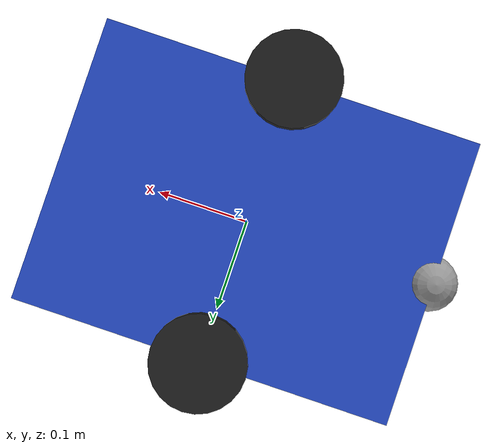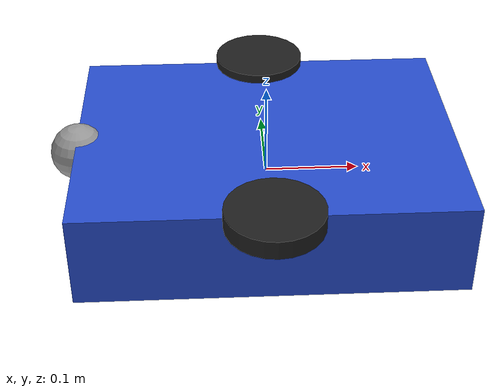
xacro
<?xml version="1.0"?>
<robot xmlns:xacro="http://www.ros.org/wiki/xacro" name="differential_drive_robot">
  <!-- Properties -->
  <xacro:property name="wheel_radius" value="0.05"/>
  <xacro:property name="wheel_width" value="0.02"/>
  <xacro:property name="base_width" value="0.3"/>
  <xacro:property name="caster_radius" value="0.03"/>
  <xacro:property name="caster_offset" value="0.2"/>
  <xacro:property name="base_length" value="0.4"/>
  <xacro:property name="base_height" value="0.1"/>
  <xacro:property name="wheel_mass" value="1.0"/>
  <xacro:property name="base_mass" value="5.0"/>
  <xacro:property name="caster_mass" value="0.5"/>

  <!-- Links -->
  <!-- Base Link -->
  <link name="base_link">
    <visual>
      <geometry>
        <box size="${base_length} ${base_width} ${base_height}"/>
      </geometry>
      <material name="blue"/>
    </visual>
    <collision>
      <geometry>
        <box size="${base_length} ${base_width} ${base_height}"/>
      </geometry>
    </collision>
    <inertial>
      <mass value="${base_mass}"/>
      <origin xyz="0 0 0" rpy="0 0 0"/>
      <inertia ixx="0.1" ixy="0" ixz="0" iyy="0.1" iyz="0" izz="0.1"/>
    </inertial>
  </link>

  <!-- Left Wheel -->
  <link name="left_wheel">
    <visual>
      <geometry>
        <cylinder radius="${wheel_radius}" length="${wheel_width}"/>
      </geometry>
      <material name="black"/>
    </visual>
    <collision>
      <geometry>
        <cylinder radius="${wheel_radius}" length="${wheel_width}"/>
      </geometry>
    </collision>
    <inertial>
      <mass value="${wheel_mass}"/>
      <origin xyz="0 0 0" rpy="0 0 0"/>
      <inertia ixx="0.01" ixy="0" ixz="0" iyy="0.01" iyz="0" izz="0.01"/>
    </inertial>
  </link>

  <!-- Right Wheel -->
  <link name="right_wheel">
    <visual>
      <geometry>
        <cylinder radius="${wheel_radius}" length="${wheel_width}"/>
      </geometry>
      <material name="black"/>
    </visual>
    <collision>
      <geometry>
        <cylinder radius="${wheel_radius}" length="${wheel_width}"/>
      </geometry>
    </collision>
    <inertial>
      <mass value="${wheel_mass}"/>
      <origin xyz="0 0 0" rpy="0 0 0"/>
      <inertia ixx="0.01" ixy="0" ixz="0" iyy="0.01" iyz="0" izz="0.01"/>
    </inertial>
  </link>

  <!-- Caster -->
  <link name="caster_wheel">
    <visual>
      <geometry>
        <sphere radius="${caster_radius}"/>
      </geometry>
      <material name="grey"/>
    </visual>
    <collision>
      <geometry>
        <sphere radius="${caster_radius}"/>
      </geometry>
    </collision>
    <inertial>
      <mass value="${caster_mass}"/>
      <origin xyz="0 0 0" rpy="0 0 0"/>
      <inertia ixx="0.001" ixy="0" ixz="0" iyy="0.001" iyz="0" izz="0.001"/>
    </inertial>
  </link>

  <!-- Joints -->
  <joint name="left_wheel_joint" type="continuous">
    <parent link="base_link"/>
    <child link="left_wheel"/>
    <origin xyz="0 ${-base_width / 2} ${wheel_radius}" rpy="0 0 0"/>
    <axis xyz="0 1 0"/>
  </joint>

  <joint name="right_wheel_joint" type="continuous">
    <parent link="base_link"/>
    <child link="right_wheel"/>
    <origin xyz="0 ${base_width / 2} ${wheel_radius}" rpy="0 0 0"/>
    <axis xyz="0 1 0"/>
  </joint>

  <joint name="caster_joint" type="fixed">
    <parent link="base_link"/>
    <child link="caster_wheel"/>
    <origin xyz="${-caster_offset} 0 ${caster_radius}" rpy="0 0 0"/>
  </joint>
</robot>
